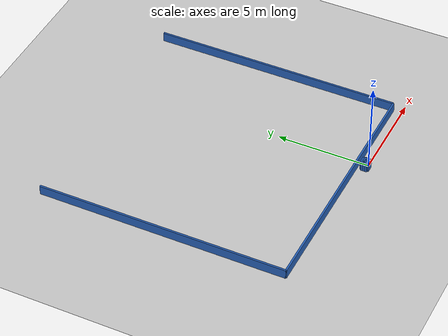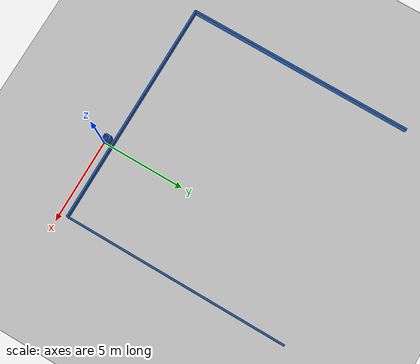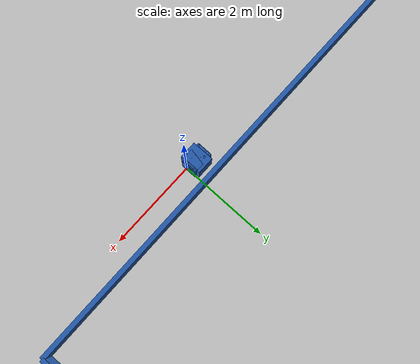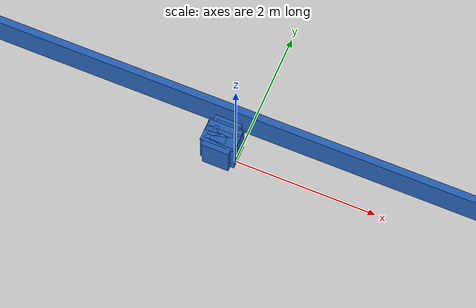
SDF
<?xml version="1.0" ?>
    <sdf version="1.5">
      <world name="default">
        <!-- A global light source -->
        <include>
          <uri>model://sun</uri>
        </include>
        <!-- A ground plane -->
        <include>
          <uri>model://ground_plane</uri>
        </include>

    <model name='libopen_space_final_T2B_52_49'>
      <static>1</static>
      <pose frame=''>-0.225000 0.075000 0.000000 0.000000 0.000000 0.000000</pose>
      <link name='link'>
        <inertial>
          <mass>1</mass>
          <inertia>
            <ixx>0.145833</ixx>
            <ixy>0</ixy>
            <ixz>0</ixz>
            <iyy>0.145833</iyy>
            <iyz>0</iyz>
            <izz>0.125</izz>
          </inertia>
        </inertial>
        <collision name='collision'>
          <geometry>
            <box>
              <size>0.42 0.26 1</size>
            </box>
          </geometry>
          <max_contacts>10</max_contacts>
          <surface>
            <contact>
              <ode/>
            </contact>
            <bounce/>
            <friction>
              <torsional>
                <ode/>
              </torsional>
              <ode/>
            </friction>
          </surface>
        </collision>
        <visual name='visual'>
          <geometry>
            <box>
              <size>0.42 0.26 1</size>
            </box>
          </geometry>
	    <material>
              <ambient>0.152000 0.379000 0.720000 1</ambient>
	      <diffuse>0.152000 0.379000 0.720000 1</diffuse>
          </material>
          <material>
            <script>
              <name>Gazebo/Grey</name>
              <uri>file://media/materials/scripts/gazebo.material</uri>
            </script>
          </material>
        </visual>
        <self_collide>0</self_collide>
        <kinematic>0</kinematic>
        <gravity>1</gravity>
      </link>
      <plugin name='libopen_space_final_T2B_52_49' filename='libopen_space_final_T2B_52_49.so'/>
    </model>

    <model name='libopen_space_final_T2B_126_41'>
      <static>1</static>
      <pose frame=''>-0.225000 0.075000 0.000000 0.000000 0.000000 0.000000</pose>
      <link name='link'>
        <inertial>
          <mass>1</mass>
          <inertia>
            <ixx>0.145833</ixx>
            <ixy>0</ixy>
            <ixz>0</ixz>
            <iyy>0.145833</iyy>
            <iyz>0</iyz>
            <izz>0.125</izz>
          </inertia>
        </inertial>
        <collision name='collision'>
          <geometry>
            <box>
              <size>0.47 0.30 1</size>
            </box>
          </geometry>
          <max_contacts>10</max_contacts>
          <surface>
            <contact>
              <ode/>
            </contact>
            <bounce/>
            <friction>
              <torsional>
                <ode/>
              </torsional>
              <ode/>
            </friction>
          </surface>
        </collision>
        <visual name='visual'>
          <geometry>
            <box>
              <size>0.47 0.30 1</size>
            </box>
          </geometry>
	    <material>
              <ambient>0.152000 0.379000 0.720000 1</ambient>
	      <diffuse>0.152000 0.379000 0.720000 1</diffuse>
          </material>
          <material>
            <script>
              <name>Gazebo/Grey</name>
              <uri>file://media/materials/scripts/gazebo.material</uri>
            </script>
          </material>
        </visual>
        <self_collide>0</self_collide>
        <kinematic>0</kinematic>
        <gravity>1</gravity>
      </link>
      <plugin name='libopen_space_final_T2B_126_41' filename='libopen_space_final_T2B_126_41.so'/>
    </model>

    <model name='libopen_space_final_T2B_112_81'>
      <static>1</static>
      <pose frame=''>-0.225000 0.075000 0.000000 0.000000 0.000000 0.000000</pose>
      <link name='link'>
        <inertial>
          <mass>1</mass>
          <inertia>
            <ixx>0.145833</ixx>
            <ixy>0</ixy>
            <ixz>0</ixz>
            <iyy>0.145833</iyy>
            <iyz>0</iyz>
            <izz>0.125</izz>
          </inertia>
        </inertial>
        <collision name='collision'>
          <geometry>
            <box>
              <size>0.27 0.14 1</size>
            </box>
          </geometry>
          <max_contacts>10</max_contacts>
          <surface>
            <contact>
              <ode/>
            </contact>
            <bounce/>
            <friction>
              <torsional>
                <ode/>
              </torsional>
              <ode/>
            </friction>
          </surface>
        </collision>
        <visual name='visual'>
          <geometry>
            <box>
              <size>0.27 0.14 1</size>
            </box>
          </geometry>
	    <material>
              <ambient>0.152000 0.379000 0.720000 1</ambient>
	      <diffuse>0.152000 0.379000 0.720000 1</diffuse>
          </material>
          <material>
            <script>
              <name>Gazebo/Grey</name>
              <uri>file://media/materials/scripts/gazebo.material</uri>
            </script>
          </material>
        </visual>
        <self_collide>0</self_collide>
        <kinematic>0</kinematic>
        <gravity>1</gravity>
      </link>
      <plugin name='libopen_space_final_T2B_112_81' filename='libopen_space_final_T2B_112_81.so'/>
    </model>

    <model name='libopen_space_final_T2B_119_97'>
      <static>1</static>
      <pose frame=''>-0.225000 0.075000 0.000000 0.000000 0.000000 0.000000</pose>
      <link name='link'>
        <inertial>
          <mass>1</mass>
          <inertia>
            <ixx>0.145833</ixx>
            <ixy>0</ixy>
            <ixz>0</ixz>
            <iyy>0.145833</iyy>
            <iyz>0</iyz>
            <izz>0.125</izz>
          </inertia>
        </inertial>
        <collision name='collision'>
          <geometry>
            <box>
              <size>0.49 0.12 1</size>
            </box>
          </geometry>
          <max_contacts>10</max_contacts>
          <surface>
            <contact>
              <ode/>
            </contact>
            <bounce/>
            <friction>
              <torsional>
                <ode/>
              </torsional>
              <ode/>
            </friction>
          </surface>
        </collision>
        <visual name='visual'>
          <geometry>
            <box>
              <size>0.49 0.12 1</size>
            </box>
          </geometry>
	    <material>
              <ambient>0.152000 0.379000 0.720000 1</ambient>
	      <diffuse>0.152000 0.379000 0.720000 1</diffuse>
          </material>
          <material>
            <script>
              <name>Gazebo/Grey</name>
              <uri>file://media/materials/scripts/gazebo.material</uri>
            </script>
          </material>
        </visual>
        <self_collide>0</self_collide>
        <kinematic>0</kinematic>
        <gravity>1</gravity>
      </link>
      <plugin name='libopen_space_final_T2B_119_97' filename='libopen_space_final_T2B_119_97.so'/>
    </model>

    <model name='libopen_space_final_T2B_116_74'>
      <static>1</static>
      <pose frame=''>-0.225000 0.075000 0.000000 0.000000 0.000000 0.000000</pose>
      <link name='link'>
        <inertial>
          <mass>1</mass>
          <inertia>
            <ixx>0.145833</ixx>
            <ixy>0</ixy>
            <ixz>0</ixz>
            <iyy>0.145833</iyy>
            <iyz>0</iyz>
            <izz>0.125</izz>
          </inertia>
        </inertial>
        <collision name='collision'>
          <geometry>
            <box>
              <size>0.14 0.13 1</size>
            </box>
          </geometry>
          <max_contacts>10</max_contacts>
          <surface>
            <contact>
              <ode/>
            </contact>
            <bounce/>
            <friction>
              <torsional>
                <ode/>
              </torsional>
              <ode/>
            </friction>
          </surface>
        </collision>
        <visual name='visual'>
          <geometry>
            <box>
              <size>0.14 0.13 1</size>
            </box>
          </geometry>
	    <material>
              <ambient>0.152000 0.379000 0.720000 1</ambient>
	      <diffuse>0.152000 0.379000 0.720000 1</diffuse>
          </material>
          <material>
            <script>
              <name>Gazebo/Grey</name>
              <uri>file://media/materials/scripts/gazebo.material</uri>
            </script>
          </material>
        </visual>
        <self_collide>0</self_collide>
        <kinematic>0</kinematic>
        <gravity>1</gravity>
      </link>
      <plugin name='libopen_space_final_T2B_116_74' filename='libopen_space_final_T2B_116_74.so'/>
    </model>

    <model name='libopen_space_final_T2B_73_39'>
      <static>1</static>
      <pose frame=''>-0.225000 0.075000 0.000000 0.000000 0.000000 0.000000</pose>
      <link name='link'>
        <inertial>
          <mass>1</mass>
          <inertia>
            <ixx>0.145833</ixx>
            <ixy>0</ixy>
            <ixz>0</ixz>
            <iyy>0.145833</iyy>
            <iyz>0</iyz>
            <izz>0.125</izz>
          </inertia>
        </inertial>
        <collision name='collision'>
          <geometry>
            <box>
              <size>0.27 0.24 1</size>
            </box>
          </geometry>
          <max_contacts>10</max_contacts>
          <surface>
            <contact>
              <ode/>
            </contact>
            <bounce/>
            <friction>
              <torsional>
                <ode/>
              </torsional>
              <ode/>
            </friction>
          </surface>
        </collision>
        <visual name='visual'>
          <geometry>
            <box>
              <size>0.27 0.24 1</size>
            </box>
          </geometry>
	    <material>
              <ambient>0.152000 0.379000 0.720000 1</ambient>
	      <diffuse>0.152000 0.379000 0.720000 1</diffuse>
          </material>
          <material>
            <script>
              <name>Gazebo/Grey</name>
              <uri>file://media/materials/scripts/gazebo.material</uri>
            </script>
          </material>
        </visual>
        <self_collide>0</self_collide>
        <kinematic>0</kinematic>
        <gravity>1</gravity>
      </link>
      <plugin name='libopen_space_final_T2B_73_39' filename='libopen_space_final_T2B_73_39.so'/>
    </model>

    <model name='libopen_space_final_T2B_91_57'>
      <static>1</static>
      <pose frame=''>-0.225000 0.075000 0.000000 0.000000 0.000000 0.000000</pose>
      <link name='link'>
        <inertial>
          <mass>1</mass>
          <inertia>
            <ixx>0.145833</ixx>
            <ixy>0</ixy>
            <ixz>0</ixz>
            <iyy>0.145833</iyy>
            <iyz>0</iyz>
            <izz>0.125</izz>
          </inertia>
        </inertial>
        <collision name='collision'>
          <geometry>
            <box>
              <size>0.27 0.12 1</size>
            </box>
          </geometry>
          <max_contacts>10</max_contacts>
          <surface>
            <contact>
              <ode/>
            </contact>
            <bounce/>
            <friction>
              <torsional>
                <ode/>
              </torsional>
              <ode/>
            </friction>
          </surface>
        </collision>
        <visual name='visual'>
          <geometry>
            <box>
              <size>0.27 0.12 1</size>
            </box>
          </geometry>
	    <material>
              <ambient>0.152000 0.379000 0.720000 1</ambient>
	      <diffuse>0.152000 0.379000 0.720000 1</diffuse>
          </material>
          <material>
            <script>
              <name>Gazebo/Grey</name>
              <uri>file://media/materials/scripts/gazebo.material</uri>
            </script>
          </material>
        </visual>
        <self_collide>0</self_collide>
        <kinematic>0</kinematic>
        <gravity>1</gravity>
      </link>
      <plugin name='libopen_space_final_T2B_91_57' filename='libopen_space_final_T2B_91_57.so'/>
    </model>

    <model name='libopen_space_final_T2B_105_8'>
      <static>1</static>
      <pose frame=''>-0.225000 0.075000 0.000000 0.000000 0.000000 0.000000</pose>
      <link name='link'>
        <inertial>
          <mass>1</mass>
          <inertia>
            <ixx>0.145833</ixx>
            <ixy>0</ixy>
            <ixz>0</ixz>
            <iyy>0.145833</iyy>
            <iyz>0</iyz>
            <izz>0.125</izz>
          </inertia>
        </inertial>
        <collision name='collision'>
          <geometry>
            <box>
              <size>0.43 0.23 1</size>
            </box>
          </geometry>
          <max_contacts>10</max_contacts>
          <surface>
            <contact>
              <ode/>
            </contact>
            <bounce/>
            <friction>
              <torsional>
                <ode/>
              </torsional>
              <ode/>
            </friction>
          </surface>
        </collision>
        <visual name='visual'>
          <geometry>
            <box>
              <size>0.43 0.23 1</size>
            </box>
          </geometry>
	    <material>
              <ambient>0.152000 0.379000 0.720000 1</ambient>
	      <diffuse>0.152000 0.379000 0.720000 1</diffuse>
          </material>
          <material>
            <script>
              <name>Gazebo/Grey</name>
              <uri>file://media/materials/scripts/gazebo.material</uri>
            </script>
          </material>
        </visual>
        <self_collide>0</self_collide>
        <kinematic>0</kinematic>
        <gravity>1</gravity>
      </link>
      <plugin name='libopen_space_final_T2B_105_8' filename='libopen_space_final_T2B_105_8.so'/>
    </model>

    <model name='libopen_space_final_T2B_90_7'>
      <static>1</static>
      <pose frame=''>-0.225000 0.075000 0.000000 0.000000 0.000000 0.000000</pose>
      <link name='link'>
        <inertial>
          <mass>1</mass>
          <inertia>
            <ixx>0.145833</ixx>
            <ixy>0</ixy>
            <ixz>0</ixz>
            <iyy>0.145833</iyy>
            <iyz>0</iyz>
            <izz>0.125</izz>
          </inertia>
        </inertial>
        <collision name='collision'>
          <geometry>
            <box>
              <size>0.48 0.28 1</size>
            </box>
          </geometry>
          <max_contacts>10</max_contacts>
          <surface>
            <contact>
              <ode/>
            </contact>
            <bounce/>
            <friction>
              <torsional>
                <ode/>
              </torsional>
              <ode/>
            </friction>
          </surface>
        </collision>
        <visual name='visual'>
          <geometry>
            <box>
              <size>0.48 0.28 1</size>
            </box>
          </geometry>
	    <material>
              <ambient>0.152000 0.379000 0.720000 1</ambient>
	      <diffuse>0.152000 0.379000 0.720000 1</diffuse>
          </material>
          <material>
            <script>
              <name>Gazebo/Grey</name>
              <uri>file://media/materials/scripts/gazebo.material</uri>
            </script>
          </material>
        </visual>
        <self_collide>0</self_collide>
        <kinematic>0</kinematic>
        <gravity>1</gravity>
      </link>
      <plugin name='libopen_space_final_T2B_90_7' filename='libopen_space_final_T2B_90_7.so'/>
    </model>

    <model name='libopen_space_final_T2B_85_62'>
      <static>1</static>
      <pose frame=''>-0.225000 0.075000 0.000000 0.000000 0.000000 0.000000</pose>
      <link name='link'>
        <inertial>
          <mass>1</mass>
          <inertia>
            <ixx>0.145833</ixx>
            <ixy>0</ixy>
            <ixz>0</ixz>
            <iyy>0.145833</iyy>
            <iyz>0</iyz>
            <izz>0.125</izz>
          </inertia>
        </inertial>
        <collision name='collision'>
          <geometry>
            <box>
              <size>0.27 0.19 1</size>
            </box>
          </geometry>
          <max_contacts>10</max_contacts>
          <surface>
            <contact>
              <ode/>
            </contact>
            <bounce/>
            <friction>
              <torsional>
                <ode/>
              </torsional>
              <ode/>
            </friction>
          </surface>
        </collision>
        <visual name='visual'>
          <geometry>
            <box>
              <size>0.27 0.19 1</size>
            </box>
          </geometry>
	    <material>
              <ambient>0.152000 0.379000 0.720000 1</ambient>
	      <diffuse>0.152000 0.379000 0.720000 1</diffuse>
          </material>
          <material>
            <script>
              <name>Gazebo/Grey</name>
              <uri>file://media/materials/scripts/gazebo.material</uri>
            </script>
          </material>
        </visual>
        <self_collide>0</self_collide>
        <kinematic>0</kinematic>
        <gravity>1</gravity>
      </link>
      <plugin name='libopen_space_final_T2B_85_62' filename='libopen_space_final_T2B_85_62.so'/>
    </model>

    <model name='libopen_space_final_T2B_103_85'>
      <static>1</static>
      <pose frame=''>-0.225000 0.075000 0.000000 0.000000 0.000000 0.000000</pose>
      <link name='link'>
        <inertial>
          <mass>1</mass>
          <inertia>
            <ixx>0.145833</ixx>
            <ixy>0</ixy>
            <ixz>0</ixz>
            <iyy>0.145833</iyy>
            <iyz>0</iyz>
            <izz>0.125</izz>
          </inertia>
        </inertial>
        <collision name='collision'>
          <geometry>
            <box>
              <size>0.38 0.12 1</size>
            </box>
          </geometry>
          <max_contacts>10</max_contacts>
          <surface>
            <contact>
              <ode/>
            </contact>
            <bounce/>
            <friction>
              <torsional>
                <ode/>
              </torsional>
              <ode/>
            </friction>
          </surface>
        </collision>
        <visual name='visual'>
          <geometry>
            <box>
              <size>0.38 0.12 1</size>
            </box>
          </geometry>
	    <material>
              <ambient>0.152000 0.379000 0.720000 1</ambient>
	      <diffuse>0.152000 0.379000 0.720000 1</diffuse>
          </material>
          <material>
            <script>
              <name>Gazebo/Grey</name>
              <uri>file://media/materials/scripts/gazebo.material</uri>
            </script>
          </material>
        </visual>
        <self_collide>0</self_collide>
        <kinematic>0</kinematic>
        <gravity>1</gravity>
      </link>
      <plugin name='libopen_space_final_T2B_103_85' filename='libopen_space_final_T2B_103_85.so'/>
    </model>

    <model name='libopen_space_final_T2B_120_90'>
      <static>1</static>
      <pose frame=''>-0.225000 0.075000 0.000000 0.000000 0.000000 0.000000</pose>
      <link name='link'>
        <inertial>
          <mass>1</mass>
          <inertia>
            <ixx>0.145833</ixx>
            <ixy>0</ixy>
            <ixz>0</ixz>
            <iyy>0.145833</iyy>
            <iyz>0</iyz>
            <izz>0.125</izz>
          </inertia>
        </inertial>
        <collision name='collision'>
          <geometry>
            <box>
              <size>0.49 0.34 1</size>
            </box>
          </geometry>
          <max_contacts>10</max_contacts>
          <surface>
            <contact>
              <ode/>
            </contact>
            <bounce/>
            <friction>
              <torsional>
                <ode/>
              </torsional>
              <ode/>
            </friction>
          </surface>
        </collision>
        <visual name='visual'>
          <geometry>
            <box>
              <size>0.49 0.34 1</size>
            </box>
          </geometry>
	    <material>
              <ambient>0.152000 0.379000 0.720000 1</ambient>
	      <diffuse>0.152000 0.379000 0.720000 1</diffuse>
          </material>
          <material>
            <script>
              <name>Gazebo/Grey</name>
              <uri>file://media/materials/scripts/gazebo.material</uri>
            </script>
          </material>
        </visual>
        <self_collide>0</self_collide>
        <kinematic>0</kinematic>
        <gravity>1</gravity>
      </link>
      <plugin name='libopen_space_final_T2B_120_90' filename='libopen_space_final_T2B_120_90.so'/>
    </model>

    <model name='libopen_space_final_T2B_112_28'>
      <static>1</static>
      <pose frame=''>-0.225000 0.075000 0.000000 0.000000 0.000000 0.000000</pose>
      <link name='link'>
        <inertial>
          <mass>1</mass>
          <inertia>
            <ixx>0.145833</ixx>
            <ixy>0</ixy>
            <ixz>0</ixz>
            <iyy>0.145833</iyy>
            <iyz>0</iyz>
            <izz>0.125</izz>
          </inertia>
        </inertial>
        <collision name='collision'>
          <geometry>
            <box>
              <size>0.38 0.48 1</size>
            </box>
          </geometry>
          <max_contacts>10</max_contacts>
          <surface>
            <contact>
              <ode/>
            </contact>
            <bounce/>
            <friction>
              <torsional>
                <ode/>
              </torsional>
              <ode/>
            </friction>
          </surface>
        </collision>
        <visual name='visual'>
          <geometry>
            <box>
              <size>0.38 0.48 1</size>
            </box>
          </geometry>
	    <material>
              <ambient>0.152000 0.379000 0.720000 1</ambient>
	      <diffuse>0.152000 0.379000 0.720000 1</diffuse>
          </material>
          <material>
            <script>
              <name>Gazebo/Grey</name>
              <uri>file://media/materials/scripts/gazebo.material</uri>
            </script>
          </material>
        </visual>
        <self_collide>0</self_collide>
        <kinematic>0</kinematic>
        <gravity>1</gravity>
      </link>
      <plugin name='libopen_space_final_T2B_112_28' filename='libopen_space_final_T2B_112_28.so'/>
    </model>

    <model name='libopen_space_final_T2B_115_72'>
      <static>1</static>
      <pose frame=''>-0.225000 0.075000 0.000000 0.000000 0.000000 0.000000</pose>
      <link name='link'>
        <inertial>
          <mass>1</mass>
          <inertia>
            <ixx>0.145833</ixx>
            <ixy>0</ixy>
            <ixz>0</ixz>
            <iyy>0.145833</iyy>
            <iyz>0</iyz>
            <izz>0.125</izz>
          </inertia>
        </inertial>
        <collision name='collision'>
          <geometry>
            <box>
              <size>0.34 0.37 1</size>
            </box>
          </geometry>
          <max_contacts>10</max_contacts>
          <surface>
            <contact>
              <ode/>
            </contact>
            <bounce/>
            <friction>
              <torsional>
                <ode/>
              </torsional>
              <ode/>
            </friction>
          </surface>
        </collision>
        <visual name='visual'>
          <geometry>
            <box>
              <size>0.34 0.37 1</size>
            </box>
          </geometry>
	    <material>
              <ambient>0.152000 0.379000 0.720000 1</ambient>
	      <diffuse>0.152000 0.379000 0.720000 1</diffuse>
          </material>
          <material>
            <script>
              <name>Gazebo/Grey</name>
              <uri>file://media/materials/scripts/gazebo.material</uri>
            </script>
          </material>
        </visual>
        <self_collide>0</self_collide>
        <kinematic>0</kinematic>
        <gravity>1</gravity>
      </link>
      <plugin name='libopen_space_final_T2B_115_72' filename='libopen_space_final_T2B_115_72.so'/>
    </model>

        <model name='bottom_wall'>
          <static>1</static>
          <pose frame=''>-2.25 0.5 0.000000 0.000000 0.000000 1.57079632</pose>
          <link name='link'>
            <inertial>
            <mass>1</mass>
            <inertia>
              <ixx>0.145833</ixx>
              <ixy>0</ixy>
              <ixz>0</ixz>
              <iyy>0.145833</iyy>
              <iyz>0</iyz>
              <izz>0.125</izz>
            </inertia>
            </inertial>
            <collision name='collision'>
            <geometry>
              <box>
              <size>0.1 13.5 1</size>
              </box>
            </geometry>
            <max_contacts>10</max_contacts>
            <surface>
              <contact>
              <ode/>
              </contact>
              <bounce/>
              <friction>
              <torsional>
                <ode/>
              </torsional>
              <ode/>
              </friction>
            </surface>
            </collision>
            <visual name='visual'>
            <geometry>
              <box>
              <size>0.1 13.5 1</size>
              </box>
            </geometry>
            <material>
              <ambient>0.152000 0.379000 0.720000 1</ambient>
            <diffuse>0.152000 0.379000 0.720000 1</diffuse>
            </material>
            <material>
              <script>
              <name>Gazebo/Grey</name>
              <uri>file://media/materials/scripts/gazebo.material</uri>
              </script>
            </material>
            </visual>
            <self_collide>0</self_collide>
            <kinematic>0</kinematic>
            <gravity>1</gravity>
          </link>
        </model>

        <model name='left_wall'>
          <static>1</static>
          <pose frame=''>-9 7.25 0.000000 0.000000 0.000000 0.000000</pose>
          <link name='link'>
            <inertial>
            <mass>1</mass>
            <inertia>
              <ixx>0.145833</ixx>
              <ixy>0</ixy>
              <ixz>0</ixz>
              <iyy>0.145833</iyy>
              <iyz>0</iyz>
              <izz>0.125</izz>
            </inertia>
            </inertial>
            <collision name='collision'>
            <geometry>
              <box>
              <size>0.1 13.5 1</size>
              </box>
            </geometry>
            <max_contacts>10</max_contacts>
            <surface>
              <contact>
              <ode/>
              </contact>
              <bounce/>
              <friction>
              <torsional>
                <ode/>
              </torsional>
              <ode/>
              </friction>
            </surface>
            </collision>
            <visual name='visual'>
            <geometry>
              <box>
              <size>0.1 13.5 1</size>
              </box>
            </geometry>
            <material>
              <ambient>0.152000 0.379000 0.720000 1</ambient>
            <diffuse>0.152000 0.379000 0.720000 1</diffuse>
            </material>
            <material>
              <script>
              <name>Gazebo/Grey</name>
              <uri>file://media/materials/scripts/gazebo.material</uri>
              </script>
            </material>
            </visual>
            <self_collide>0</self_collide>
            <kinematic>0</kinematic>
            <gravity>1</gravity>
          </link>
        </model>

        <model name='right_wall'>
          <static>1</static>
          <pose frame=''>4.5 7.25 0.000000 0.000000 0.000000 0.000000</pose>
          <link name='link'>
            <inertial>
            <mass>1</mass>
            <inertia>
              <ixx>0.145833</ixx>
              <ixy>0</ixy>
              <ixz>0</ixz>
              <iyy>0.145833</iyy>
              <iyz>0</iyz>
              <izz>0.125</izz>
            </inertia>
            </inertial>
            <collision name='collision'>
            <geometry>
              <box>
              <size>0.1 13.5 1</size>
              </box>
            </geometry>
            <max_contacts>10</max_contacts>
            <surface>
              <contact>
              <ode/>
              </contact>
              <bounce/>
              <friction>
              <torsional>
                <ode/>
              </torsional>
              <ode/>
              </friction>
            </surface>
            </collision>
            <visual name='visual'>
            <geometry>
              <box>
              <size>0.1 13.5 1</size>
              </box>
            </geometry>
            <material>
              <ambient>0.152000 0.379000 0.720000 1</ambient>
            <diffuse>0.152000 0.379000 0.720000 1</diffuse>
            </material>
            <material>
              <script>
              <name>Gazebo/Grey</name>
              <uri>file://media/materials/scripts/gazebo.material</uri>
              </script>
            </material>
            </visual>
            <self_collide>0</self_collide>
            <kinematic>0</kinematic>
            <gravity>1</gravity>
          </link>
        </model>

      </world>
    </sdf>"
